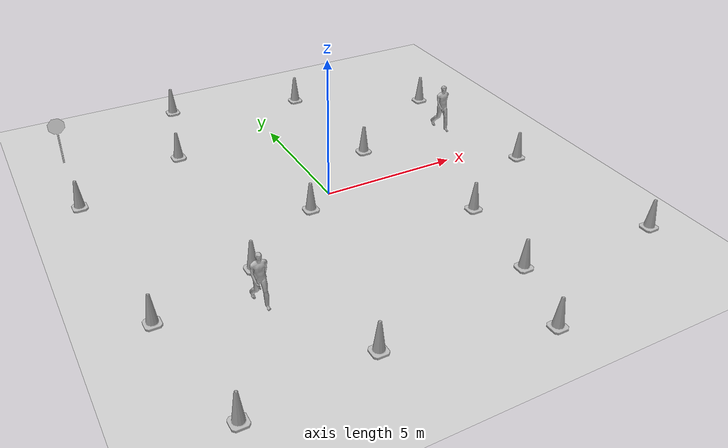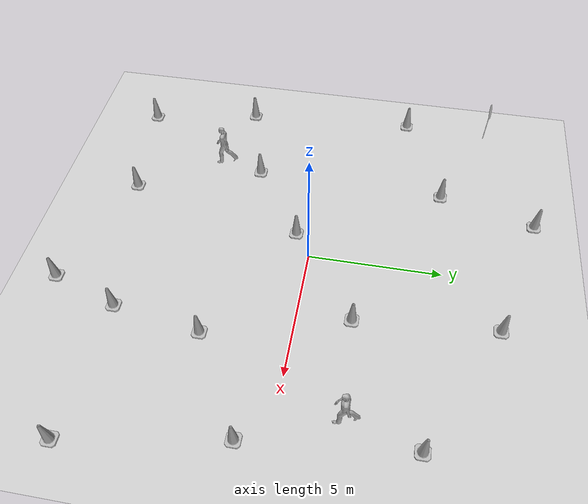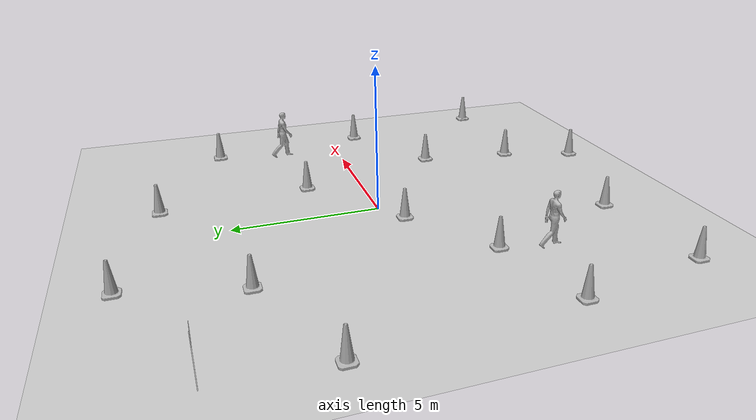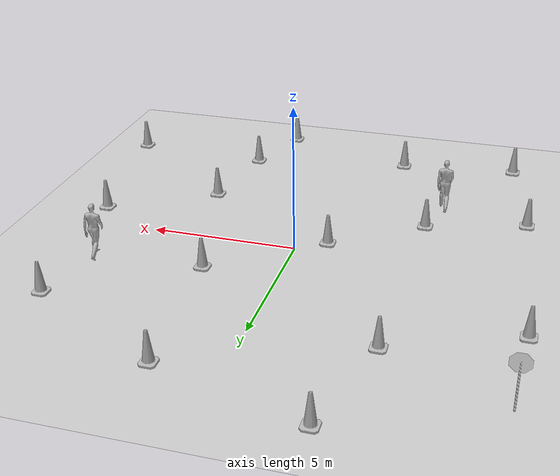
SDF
<sdf version="1.6">
 <world name="default">
  <light name="sun" type="directional">
   <pose>0 0 10 0 -0 0</pose>
   <diffuse>0.8 0.8 0.8 1</diffuse>
   <specular>0.2 0.2 0.2 1</specular>
   <attenuation>
    <range>1000</range>
    <constant>0.9</constant>
    <linear>0.01</linear>
    <quadratic>0.001</quadratic>
   </attenuation>
   <direction>-0.5 0.1 -0.9</direction>
  </light>
  <model name="ground_plane">
   <static>1</static>
   <link name="link">
    <collision name="collision">
     <geometry><plane><normal>0 0 1</normal><size>100 100</size></plane></geometry>
     <surface>
      <contact><collide_bitmask>65535</collide_bitmask></contact>
      <friction><ode><mu>100</mu><mu2>50</mu2></ode></friction>
     </surface>
    </collision>
    <visual name="visual">
     <cast_shadows>0</cast_shadows>
     <geometry><plane><normal>0 0 1</normal><size>100 100</size></plane></geometry>
     <material>
      <script><uri>file://media/materials/scripts/gazebo.material</uri><name>Gazebo/Grey</name></script>
     </material>
    </visual>
   </link>
  </model>
  <gravity>0 0 -9.8</gravity>
  <magnetic_field>6e-06 2.3e-05 -4.2e-05</magnetic_field>
  <atmosphere type="adiabatic"/>
  <physics name="default_physics" default="0" type="ode">
   <max_step_size>0.001</max_step_size>
   <real_time_factor>1</real_time_factor>
   <real_time_update_rate>1000</real_time_update_rate>
  </physics>
  <scene><ambient>0.3 0.4 0.2 0</ambient><background>0.7 0.7 0.7 1</background><shadows>0</shadows></scene>
  <audio><device>default</device></audio>
  <spherical_coordinates>
   <surface_model>EARTH_WGS84</surface_model>
   <latitude_deg>0</latitude_deg>
   <longitude_deg>0</longitude_deg>
   <elevation>0</elevation>
   <heading_deg>0</heading_deg>
  </spherical_coordinates>
  <model name="Construction Cone">
   <link name="link">
    <collision name="collision">
     <geometry>
      <mesh><scale>10 10 10</scale><uri>model://construction_cone/meshes/construction_cone.dae</uri></mesh>
     </geometry>
    </collision>
    <visual name="visual">
     <geometry>
      <mesh><scale>10 10 10</scale><uri>model://construction_cone/meshes/construction_cone.dae</uri></mesh>
     </geometry>
    </visual>
    <inertial>
     <inertia><ixx>1</ixx><ixy>0</ixy><ixz>0</ixz><iyy>1</iyy><iyz>0</iyz><izz>1</izz></inertia>
     <mass>1</mass>
    </inertial>
   </link>
   <pose>3.33162 -6.48957 -0 -0 -0 -0</pose>
  </model>
  <model name="Construction Cone_0">
   <link name="link">
    <collision name="collision">
     <geometry>
      <mesh><scale>10 10 10</scale><uri>model://construction_cone/meshes/construction_cone.dae</uri></mesh>
     </geometry>
    </collision>
    <visual name="visual">
     <geometry>
      <mesh><scale>10 10 10</scale><uri>model://construction_cone/meshes/construction_cone.dae</uri></mesh>
     </geometry>
    </visual>
    <inertial>
     <inertia><ixx>1</ixx><ixy>0</ixy><ixz>0</ixz><iyy>1</iyy><iyz>0</iyz><izz>1</izz></inertia>
     <mass>1</mass>
    </inertial>
   </link>
   <pose>-2.39068 -7.52122 -0 0 -0 0</pose>
  </model>
  <model name="Construction Cone_1">
   <link name="link">
    <collision name="collision">
     <geometry>
      <mesh><scale>10 10 10</scale><uri>model://construction_cone/meshes/construction_cone.dae</uri></mesh>
     </geometry>
    </collision>
    <visual name="visual">
     <geometry>
      <mesh><scale>10 10 10</scale><uri>model://construction_cone/meshes/construction_cone.dae</uri></mesh>
     </geometry>
    </visual>
    <inertial>
     <inertia><ixx>1</ixx><ixy>0</ixy><ixz>0</ixz><iyy>1</iyy><iyz>0</iyz><izz>1</izz></inertia>
     <mass>1</mass>
    </inertial>
   </link>
   <pose>-3.98418 -2.67712 -0 0 -0 0</pose>
  </model>
  <model name="Construction Cone_3">
   <link name="link">
    <collision name="collision">
     <geometry>
      <mesh><scale>10 10 10</scale><uri>model://construction_cone/meshes/construction_cone.dae</uri></mesh>
     </geometry>
    </collision>
    <visual name="visual">
     <geometry>
      <mesh><scale>10 10 10</scale><uri>model://construction_cone/meshes/construction_cone.dae</uri></mesh>
     </geometry>
    </visual>
    <inertial>
     <inertia><ixx>1</ixx><ixy>0</ixy><ixz>0</ixz><iyy>1</iyy><iyz>0</iyz><izz>1</izz></inertia>
     <mass>1</mass>
    </inertial>
   </link>
   <pose>-1.00242 -0.628999 -0 0 -0 0</pose>
  </model>
  <model name="Construction Cone_4">
   <link name="link">
    <collision name="collision">
     <geometry>
      <mesh><scale>10 10 10</scale><uri>model://construction_cone/meshes/construction_cone.dae</uri></mesh>
     </geometry>
    </collision>
    <visual name="visual">
     <geometry>
      <mesh><scale>10 10 10</scale><uri>model://construction_cone/meshes/construction_cone.dae</uri></mesh>
     </geometry>
    </visual>
    <inertial>
     <inertia><ixx>1</ixx><ixy>0</ixy><ixz>0</ixz><iyy>1</iyy><iyz>0</iyz><izz>1</izz></inertia>
     <mass>1</mass>
    </inertial>
   </link>
   <pose>-7.86923 3.16067 -0 0 -0 0</pose>
  </model>
  <model name="Construction Cone_5">
   <link name="link">
    <collision name="collision">
     <geometry>
      <mesh><scale>10 10 10</scale><uri>model://construction_cone/meshes/construction_cone.dae</uri></mesh>
     </geometry>
    </collision>
    <visual name="visual">
     <geometry>
      <mesh><scale>10 10 10</scale><uri>model://construction_cone/meshes/construction_cone.dae</uri></mesh>
     </geometry>
    </visual>
    <inertial>
     <inertia><ixx>1</ixx><ixy>0</ixy><ixz>0</ixz><iyy>1</iyy><iyz>0</iyz><izz>1</izz></inertia>
     <mass>1</mass>
    </inertial>
   </link>
   <pose>8.30685 -6.73365 -0 0 -1e-06 0</pose>
  </model>
  <model name="Construction Cone_6">
   <link name="link">
    <collision name="collision">
     <geometry>
      <mesh><scale>10 10 10</scale><uri>model://construction_cone/meshes/construction_cone.dae</uri></mesh>
     </geometry>
    </collision>
    <visual name="visual">
     <geometry>
      <mesh><scale>10 10 10</scale><uri>model://construction_cone/meshes/construction_cone.dae</uri></mesh>
     </geometry>
    </visual>
    <inertial>
     <inertia><ixx>1</ixx><ixy>0</ixy><ixz>0</ixz><iyy>1</iyy><iyz>0</iyz><izz>1</izz></inertia>
     <mass>1</mass>
    </inertial>
   </link>
   <pose>3.8694 -3.18014 -1e-05 0 -0 0</pose>
  </model>
  <model name="Construction Cone_7">
   <link name="link">
    <collision name="collision">
     <geometry>
      <mesh><scale>10 10 10</scale><uri>model://construction_cone/meshes/construction_cone.dae</uri></mesh>
     </geometry>
    </collision>
    <visual name="visual">
     <geometry>
      <mesh><scale>10 10 10</scale><uri>model://construction_cone/meshes/construction_cone.dae</uri></mesh>
     </geometry>
    </visual>
    <inertial>
     <inertia><ixx>1</ixx><ixy>0</ixy><ixz>0</ixz><iyy>1</iyy><iyz>0</iyz><izz>1</izz></inertia>
     <mass>1</mass>
    </inertial>
   </link>
   <pose>7.36727 -1.11442 -0 0 -0 0</pose>
  </model>
  <model name="Construction Cone_8">
   <link name="link">
    <collision name="collision">
     <geometry>
      <mesh><scale>10 10 10</scale><uri>model://construction_cone/meshes/construction_cone.dae</uri></mesh>
     </geometry>
    </collision>
    <visual name="visual">
     <geometry>
      <mesh><scale>10 10 10</scale><uri>model://construction_cone/meshes/construction_cone.dae</uri></mesh>
     </geometry>
    </visual>
    <inertial>
     <inertia><ixx>1</ixx><ixy>0</ixy><ixz>0</ixz><iyy>1</iyy><iyz>0</iyz><izz>1</izz></inertia>
     <mass>1</mass>
    </inertial>
   </link>
   <pose>2.50833 1.96559 -0 0 -0 0</pose>
  </model>
  <model name="Construction Cone_9">
   <link name="link">
    <collision name="collision">
     <geometry>
      <mesh><scale>10 10 10</scale><uri>model://construction_cone/meshes/construction_cone.dae</uri></mesh>
     </geometry>
    </collision>
    <visual name="visual">
     <geometry>
      <mesh><scale>10 10 10</scale><uri>model://construction_cone/meshes/construction_cone.dae</uri></mesh>
     </geometry>
    </visual>
    <inertial>
     <inertia><ixx>1</ixx><ixy>0</ixy><ixz>0</ixz><iyy>1</iyy><iyz>0</iyz><izz>1</izz></inertia>
     <mass>1</mass>
    </inertial>
   </link>
   <pose>6.76493 4.68138 -0 0 -0 0</pose>
  </model>
  <model name="Construction Cone_10">
   <link name="link">
    <collision name="collision">
     <geometry>
      <mesh><scale>10 10 10</scale><uri>model://construction_cone/meshes/construction_cone.dae</uri></mesh>
     </geometry>
    </collision>
    <visual name="visual">
     <geometry>
      <mesh><scale>10 10 10</scale><uri>model://construction_cone/meshes/construction_cone.dae</uri></mesh>
     </geometry>
    </visual>
    <inertial>
     <inertia><ixx>1</ixx><ixy>0</ixy><ixz>0</ixz><iyy>1</iyy><iyz>0</iyz><izz>1</izz></inertia>
     <mass>1</mass>
    </inertial>
   </link>
   <pose>-2.86892 8.47297 -0 0 -1e-06 0</pose>
  </model>
  <model name="Construction Cone_11">
   <link name="link">
    <collision name="collision">
     <geometry>
      <mesh><scale>10 10 10</scale><uri>model://construction_cone/meshes/construction_cone.dae</uri></mesh>
     </geometry>
    </collision>
    <visual name="visual">
     <geometry>
      <mesh><scale>10 10 10</scale><uri>model://construction_cone/meshes/construction_cone.dae</uri></mesh>
     </geometry>
    </visual>
    <inertial>
     <inertia><ixx>1</ixx><ixy>0</ixy><ixz>0</ixz><iyy>1</iyy><iyz>0</iyz><izz>1</izz></inertia>
     <mass>1</mass>
    </inertial>
   </link>
   <pose>2.08059 7.13396 -0 0 -1e-06 0</pose>
  </model>
  <model name="Construction Cone_12">
   <link name="link">
    <collision name="collision">
     <geometry>
      <mesh><scale>10 10 10</scale><uri>model://construction_cone/meshes/construction_cone.dae</uri></mesh>
     </geometry>
    </collision>
    <visual name="visual">
     <geometry>
      <mesh><scale>10 10 10</scale><uri>model://construction_cone/meshes/construction_cone.dae</uri></mesh>
     </geometry>
    </visual>
    <inertial>
     <inertia><ixx>1</ixx><ixy>0</ixy><ixz>0</ixz><iyy>1</iyy><iyz>0</iyz><izz>1</izz></inertia>
     <mass>1</mass>
    </inertial>
   </link>
   <pose>-3.84252 4.80474 -0 0 -0 0</pose>
  </model>
  <model name="Construction Cone_13">
   <link name="link">
    <collision name="collision">
     <geometry>
      <mesh><scale>10 10 10</scale><uri>model://construction_cone/meshes/construction_cone.dae</uri></mesh>
     </geometry>
    </collision>
    <visual name="visual">
     <geometry>
      <mesh><scale>10 10 10</scale><uri>model://construction_cone/meshes/construction_cone.dae</uri></mesh>
     </geometry>
    </visual>
    <inertial>
     <inertia><ixx>1</ixx><ixy>0</ixy><ixz>0</ixz><iyy>1</iyy><iyz>0</iyz><izz>1</izz></inertia>
     <mass>1</mass>
    </inertial>
   </link>
   <pose>-7.40225 -3.63952 -0 0 -0 0</pose>
  </model>
  <model name="Construction Cone_2">
   <link name="link">
    <collision name="collision">
     <geometry>
      <mesh><scale>10 10 10</scale><uri>model://construction_cone/meshes/construction_cone.dae</uri></mesh>
     </geometry>
    </collision>
    <visual name="visual">
     <geometry>
      <mesh><scale>10 10 10</scale><uri>model://construction_cone/meshes/construction_cone.dae</uri></mesh>
     </geometry>
    </visual>
    <inertial>
     <inertia><ixx>1</ixx><ixy>0</ixy><ixz>0</ixz><iyy>1</iyy><iyz>0</iyz><izz>1</izz></inertia>
     <mass>1</mass>
    </inertial>
   </link>
   <pose>2.45775 -9.02223 -0 0 -0 0</pose>
  </model>
  <model name="Construction Cone_14">
   <link name="link">
    <collision name="collision">
     <geometry>
      <mesh><scale>10 10 10</scale><uri>model://construction_cone/meshes/construction_cone.dae</uri></mesh>
     </geometry>
    </collision>
    <visual name="visual">
     <geometry>
      <mesh><scale>10 10 10</scale><uri>model://construction_cone/meshes/construction_cone.dae</uri></mesh>
     </geometry>
    </visual>
    <inertial>
     <inertia><ixx>1</ixx><ixy>0</ixy><ixz>0</ixz><iyy>1</iyy><iyz>0</iyz><izz>1</izz></inertia>
     <mass>1</mass>
    </inertial>
   </link>
   <pose>-6.59384 -8.02121 -0 0 -1e-06 0</pose>
  </model>
  <model name="person_walking">
   <link name="link">
    <inertial>
     <pose>0 0 0.95 0 -0 0</pose>
     <mass>80</mass>
     <inertia><ixx>27.82</ixx><ixy>0</ixy><ixz>0</ixz><iyy>24.88</iyy><iyz>0</iyz><izz>4.57</izz></inertia>
    </inertial>
    <collision name="bottom">
     <pose>0 0 0.01 0 -0 0</pose>
     <geometry><box><size>0.35 0.75 0.02</size></box></geometry>
    </collision>
    <collision name="person">
     <pose>0 0 -0.02 0 -0 0</pose>
     <geometry><mesh><uri>model://person_walking/meshes/walking.dae</uri></mesh></geometry>
    </collision>
    <visual name="visual">
     <pose>0 0 -0.02 0 -0 0</pose>
     <geometry><mesh><uri>model://person_walking/meshes/walking.dae</uri></mesh></geometry>
    </visual>
   </link>
   <pose>6.15648 2.20349 0 1e-06 -1e-06 0.000471</pose>
  </model>
  <model name="person_walking_0">
   <link name="link">
    <inertial>
     <pose>0 0 0.95 0 -0 0</pose>
     <mass>80</mass>
     <inertia><ixx>27.82</ixx><ixy>0</ixy><ixz>0</ixz><iyy>24.88</iyy><iyz>0</iyz><izz>4.57</izz></inertia>
    </inertial>
    <collision name="bottom">
     <pose>0 0 0.01 0 -0 0</pose>
     <geometry><box><size>0.35 0.75 0.02</size></box></geometry>
    </collision>
    <collision name="person">
     <pose>0 0 -0.02 0 -0 0</pose>
     <geometry><mesh><uri>model://person_walking/meshes/walking.dae</uri></mesh></geometry>
    </collision>
    <visual name="visual">
     <pose>0 0 -0.02 0 -0 0</pose>
     <geometry><mesh><uri>model://person_walking/meshes/walking.dae</uri></mesh></geometry>
    </visual>
   </link>
   <pose>-4.39628 -4.25659 1e-06 1e-06 0 -0.000205</pose>
  </model>
  <model name="Stop Sign">
   <static>1</static>
   <link name="link">
    <collision name="collision">
     <geometry><mesh><uri>model://stop_sign/meshes/stop_sign.dae</uri></mesh></geometry>
    </collision>
    <visual name="visual">
     <geometry><mesh><uri>model://stop_sign/meshes/stop_sign.dae</uri></mesh></geometry>
     <material>
      <script>
       <uri>model://stop_sign/materials/scripts</uri>
       <uri>model://stop_sign/materials/textures</uri>
       <name>StopSign/Diffuse</name>
      </script>
     </material>
    </visual>
   </link>
   <pose>-7.7059 6.52883 0 0 -0 0</pose>
  </model>
 </world>
</sdf>
